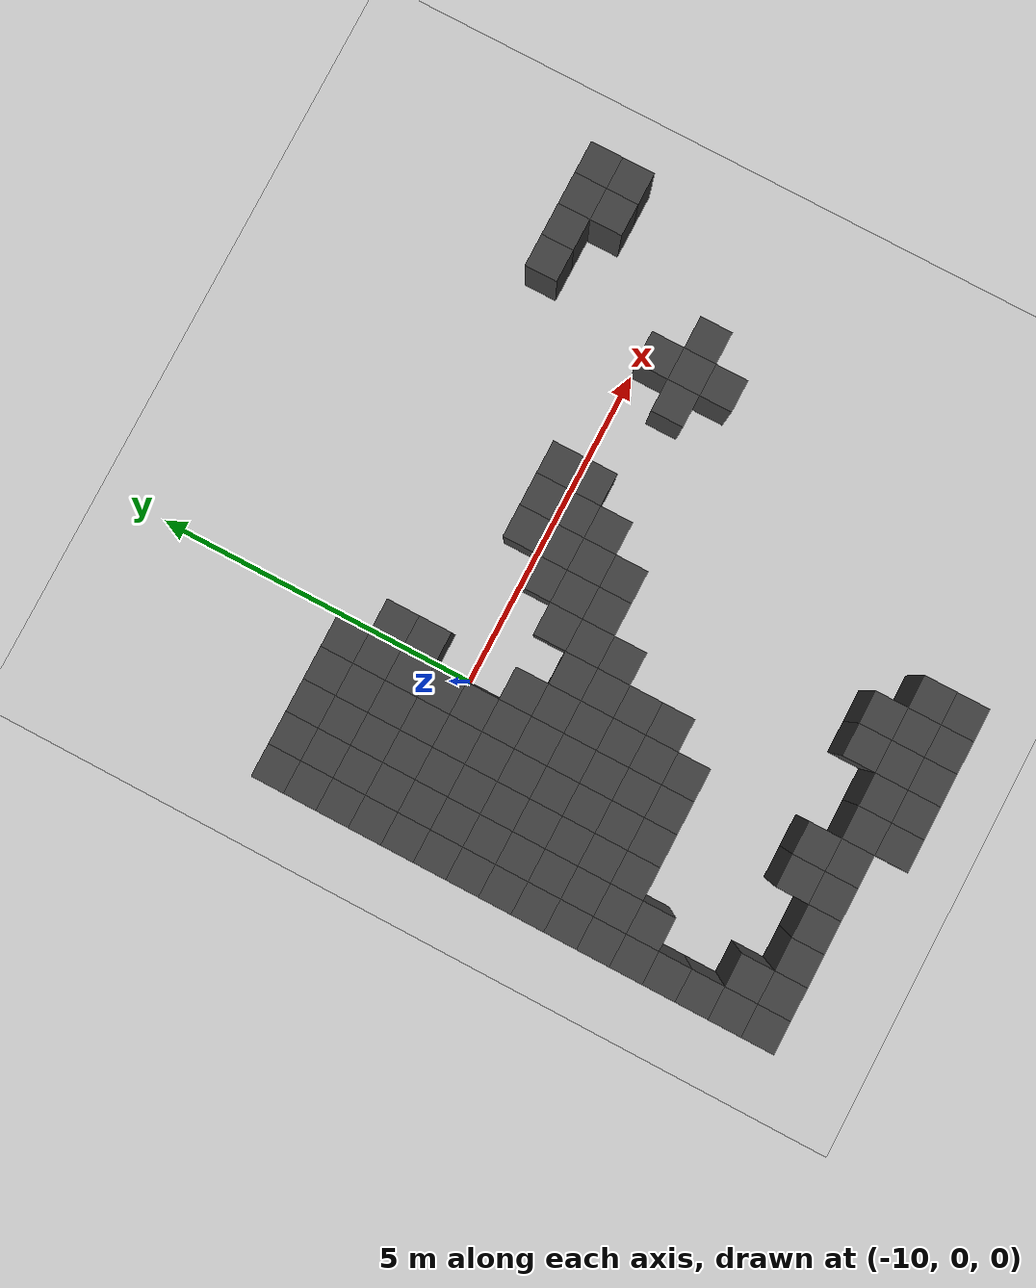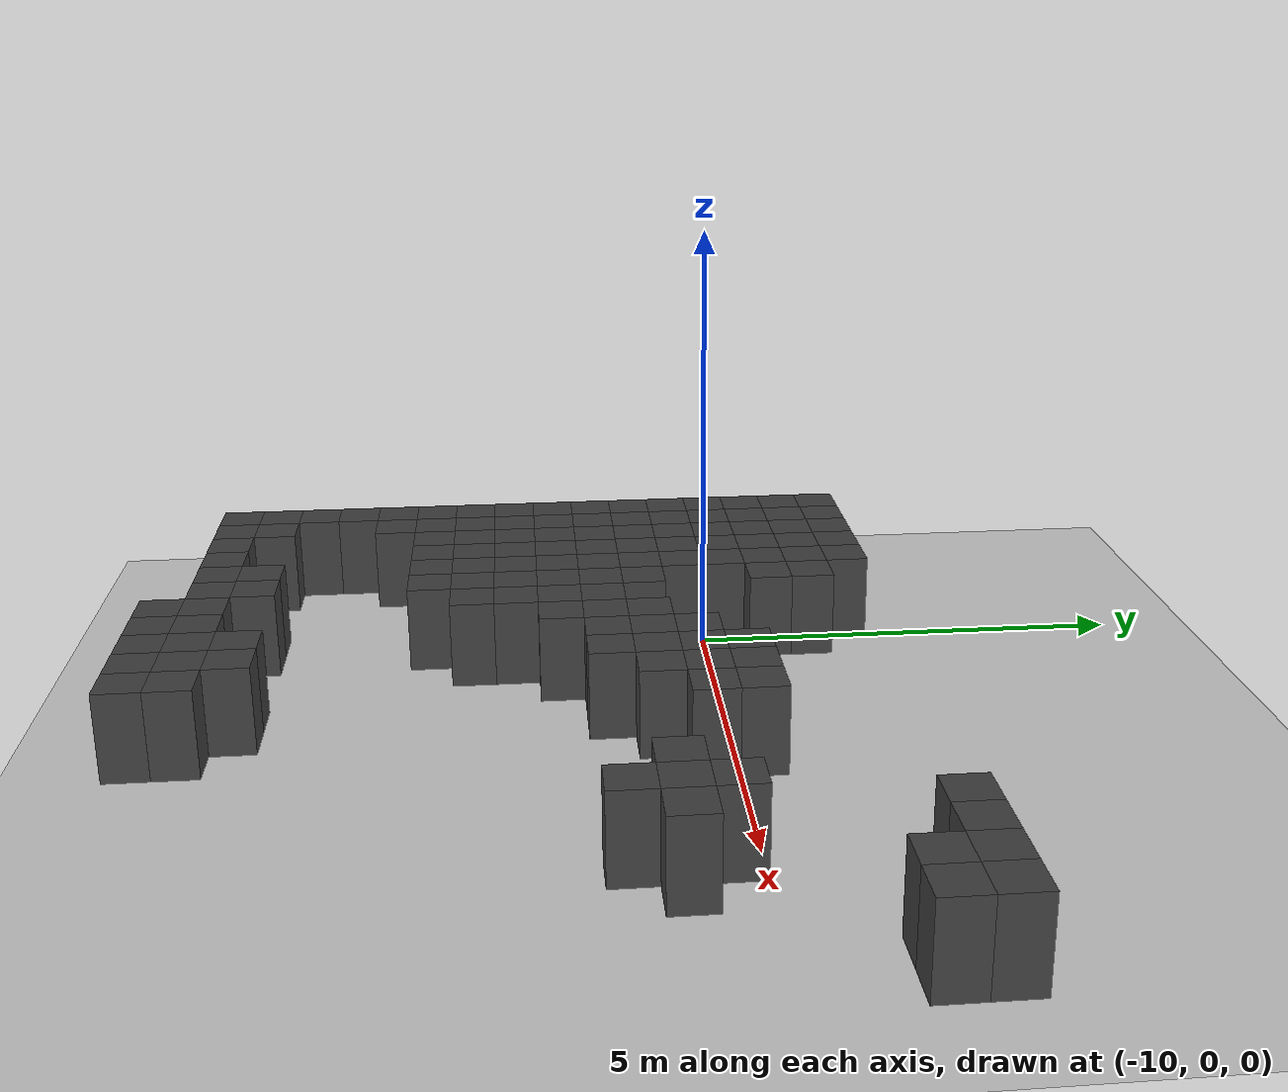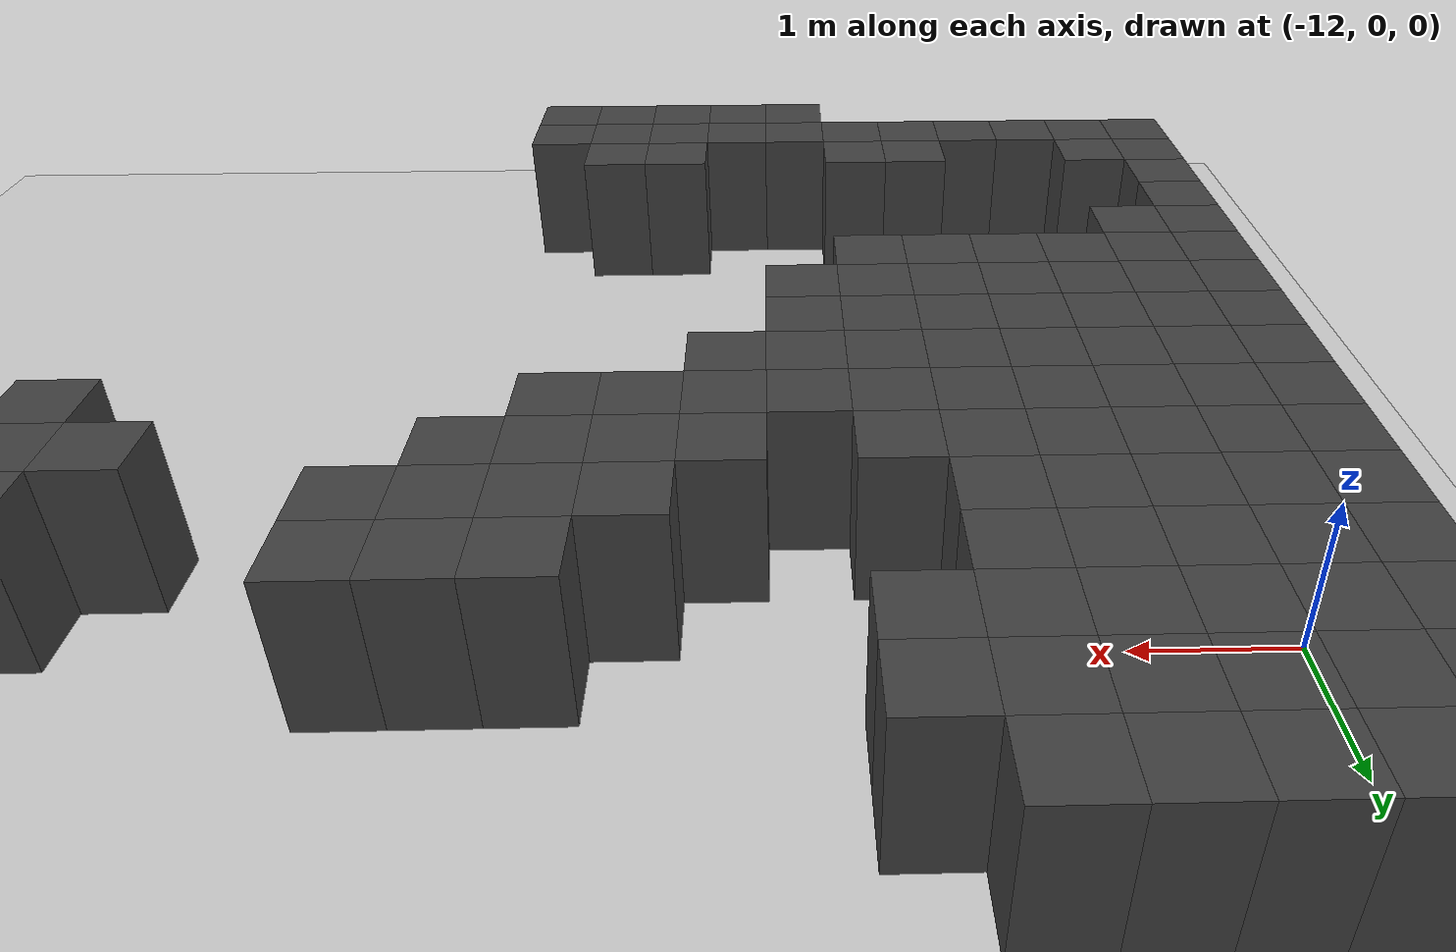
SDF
<sdf version="1.7">
 <world name="map_9705">
  <model name="ground_plane">
   <static>true</static>
   <link name="link">
    <collision name="collision">
     <geometry><plane><normal>0 0 1</normal><size>200 200</size></plane></geometry>
    </collision>
    <visual name="visual">
     <geometry><plane><normal>0 0 1</normal><size>200 200</size></plane></geometry>
     <material><ambient>0.8 0.8 0.8 1</ambient><diffuse>0.8 0.8 0.8 1</diffuse></material>
    </visual>
   </link>
  </model>
  <model name="maze_environment">
   <static>true</static>
   <link name="wall_508">
    <pose>-12.250 1.750 0.500 0 0 0</pose>
    <collision name="col"><geometry><box><size>0.5 0.5 1.0</size></box></geometry></collision>
    <visual name="vis">
     <geometry><box><size>0.5 0.5 1.0</size></box></geometry>
     <material><ambient>0.15 0.15 0.15 1</ambient><diffuse>0.25 0.25 0.25 1</diffuse></material>
    </visual>
   </link>
   <link name="wall_509">
    <pose>-11.750 1.750 0.500 0 0 0</pose>
    <collision name="col"><geometry><box><size>0.5 0.5 1.0</size></box></geometry></collision>
    <visual name="vis">
     <geometry><box><size>0.5 0.5 1.0</size></box></geometry>
     <material><ambient>0.15 0.15 0.15 1</ambient><diffuse>0.25 0.25 0.25 1</diffuse></material>
    </visual>
   </link>
   <link name="wall_510">
    <pose>-11.250 1.750 0.500 0 0 0</pose>
    <collision name="col"><geometry><box><size>0.5 0.5 1.0</size></box></geometry></collision>
    <visual name="vis">
     <geometry><box><size>0.5 0.5 1.0</size></box></geometry>
     <material><ambient>0.15 0.15 0.15 1</ambient><diffuse>0.25 0.25 0.25 1</diffuse></material>
    </visual>
   </link>
   <link name="wall_511">
    <pose>-10.750 1.750 0.500 0 0 0</pose>
    <collision name="col"><geometry><box><size>0.5 0.5 1.0</size></box></geometry></collision>
    <visual name="vis">
     <geometry><box><size>0.5 0.5 1.0</size></box></geometry>
     <material><ambient>0.15 0.15 0.15 1</ambient><diffuse>0.25 0.25 0.25 1</diffuse></material>
    </visual>
   </link>
   <link name="wall_512">
    <pose>-10.250 1.750 0.500 0 0 0</pose>
    <collision name="col"><geometry><box><size>0.5 0.5 1.0</size></box></geometry></collision>
    <visual name="vis">
     <geometry><box><size>0.5 0.5 1.0</size></box></geometry>
     <material><ambient>0.15 0.15 0.15 1</ambient><diffuse>0.25 0.25 0.25 1</diffuse></material>
    </visual>
   </link>
   <link name="wall_513">
    <pose>-4.250 1.750 0.500 0 0 0</pose>
    <collision name="col"><geometry><box><size>0.5 0.5 1.0</size></box></geometry></collision>
    <visual name="vis">
     <geometry><box><size>0.5 0.5 1.0</size></box></geometry>
     <material><ambient>0.15 0.15 0.15 1</ambient><diffuse>0.25 0.25 0.25 1</diffuse></material>
    </visual>
   </link>
   <link name="wall_514">
    <pose>-3.750 1.750 0.500 0 0 0</pose>
    <collision name="col"><geometry><box><size>0.5 0.5 1.0</size></box></geometry></collision>
    <visual name="vis">
     <geometry><box><size>0.5 0.5 1.0</size></box></geometry>
     <material><ambient>0.15 0.15 0.15 1</ambient><diffuse>0.25 0.25 0.25 1</diffuse></material>
    </visual>
   </link>
   <link name="wall_515">
    <pose>-3.250 1.750 0.500 0 0 0</pose>
    <collision name="col"><geometry><box><size>0.5 0.5 1.0</size></box></geometry></collision>
    <visual name="vis">
     <geometry><box><size>0.5 0.5 1.0</size></box></geometry>
     <material><ambient>0.15 0.15 0.15 1</ambient><diffuse>0.25 0.25 0.25 1</diffuse></material>
    </visual>
   </link>
   <link name="wall_516">
    <pose>-2.750 1.750 0.500 0 0 0</pose>
    <collision name="col"><geometry><box><size>0.5 0.5 1.0</size></box></geometry></collision>
    <visual name="vis">
     <geometry><box><size>0.5 0.5 1.0</size></box></geometry>
     <material><ambient>0.15 0.15 0.15 1</ambient><diffuse>0.25 0.25 0.25 1</diffuse></material>
    </visual>
   </link>
   <link name="wall_525">
    <pose>-12.250 1.250 0.500 0 0 0</pose>
    <collision name="col"><geometry><box><size>0.5 0.5 1.0</size></box></geometry></collision>
    <visual name="vis">
     <geometry><box><size>0.5 0.5 1.0</size></box></geometry>
     <material><ambient>0.15 0.15 0.15 1</ambient><diffuse>0.25 0.25 0.25 1</diffuse></material>
    </visual>
   </link>
   <link name="wall_526">
    <pose>-11.750 1.250 0.500 0 0 0</pose>
    <collision name="col"><geometry><box><size>0.5 0.5 1.0</size></box></geometry></collision>
    <visual name="vis">
     <geometry><box><size>0.5 0.5 1.0</size></box></geometry>
     <material><ambient>0.15 0.15 0.15 1</ambient><diffuse>0.25 0.25 0.25 1</diffuse></material>
    </visual>
   </link>
   <link name="wall_527">
    <pose>-11.250 1.250 0.500 0 0 0</pose>
    <collision name="col"><geometry><box><size>0.5 0.5 1.0</size></box></geometry></collision>
    <visual name="vis">
     <geometry><box><size>0.5 0.5 1.0</size></box></geometry>
     <material><ambient>0.15 0.15 0.15 1</ambient><diffuse>0.25 0.25 0.25 1</diffuse></material>
    </visual>
   </link>
   <link name="wall_528">
    <pose>-10.750 1.250 0.500 0 0 0</pose>
    <collision name="col"><geometry><box><size>0.5 0.5 1.0</size></box></geometry></collision>
    <visual name="vis">
     <geometry><box><size>0.5 0.5 1.0</size></box></geometry>
     <material><ambient>0.15 0.15 0.15 1</ambient><diffuse>0.25 0.25 0.25 1</diffuse></material>
    </visual>
   </link>
   <link name="wall_529">
    <pose>-10.250 1.250 0.500 0 0 0</pose>
    <collision name="col"><geometry><box><size>0.5 0.5 1.0</size></box></geometry></collision>
    <visual name="vis">
     <geometry><box><size>0.5 0.5 1.0</size></box></geometry>
     <material><ambient>0.15 0.15 0.15 1</ambient><diffuse>0.25 0.25 0.25 1</diffuse></material>
    </visual>
   </link>
   <link name="wall_530">
    <pose>-9.750 1.250 0.500 0 0 0</pose>
    <collision name="col"><geometry><box><size>0.5 0.5 1.0</size></box></geometry></collision>
    <visual name="vis">
     <geometry><box><size>0.5 0.5 1.0</size></box></geometry>
     <material><ambient>0.15 0.15 0.15 1</ambient><diffuse>0.25 0.25 0.25 1</diffuse></material>
    </visual>
   </link>
   <link name="wall_531">
    <pose>-3.250 1.250 0.500 0 0 0</pose>
    <collision name="col"><geometry><box><size>0.5 0.5 1.0</size></box></geometry></collision>
    <visual name="vis">
     <geometry><box><size>0.5 0.5 1.0</size></box></geometry>
     <material><ambient>0.15 0.15 0.15 1</ambient><diffuse>0.25 0.25 0.25 1</diffuse></material>
    </visual>
   </link>
   <link name="wall_532">
    <pose>-2.750 1.250 0.500 0 0 0</pose>
    <collision name="col"><geometry><box><size>0.5 0.5 1.0</size></box></geometry></collision>
    <visual name="vis">
     <geometry><box><size>0.5 0.5 1.0</size></box></geometry>
     <material><ambient>0.15 0.15 0.15 1</ambient><diffuse>0.25 0.25 0.25 1</diffuse></material>
    </visual>
   </link>
   <link name="wall_542">
    <pose>-12.250 0.750 0.500 0 0 0</pose>
    <collision name="col"><geometry><box><size>0.5 0.5 1.0</size></box></geometry></collision>
    <visual name="vis">
     <geometry><box><size>0.5 0.5 1.0</size></box></geometry>
     <material><ambient>0.15 0.15 0.15 1</ambient><diffuse>0.25 0.25 0.25 1</diffuse></material>
    </visual>
   </link>
   <link name="wall_543">
    <pose>-11.750 0.750 0.500 0 0 0</pose>
    <collision name="col"><geometry><box><size>0.5 0.5 1.0</size></box></geometry></collision>
    <visual name="vis">
     <geometry><box><size>0.5 0.5 1.0</size></box></geometry>
     <material><ambient>0.15 0.15 0.15 1</ambient><diffuse>0.25 0.25 0.25 1</diffuse></material>
    </visual>
   </link>
   <link name="wall_544">
    <pose>-11.250 0.750 0.500 0 0 0</pose>
    <collision name="col"><geometry><box><size>0.5 0.5 1.0</size></box></geometry></collision>
    <visual name="vis">
     <geometry><box><size>0.5 0.5 1.0</size></box></geometry>
     <material><ambient>0.15 0.15 0.15 1</ambient><diffuse>0.25 0.25 0.25 1</diffuse></material>
    </visual>
   </link>
   <link name="wall_545">
    <pose>-10.750 0.750 0.500 0 0 0</pose>
    <collision name="col"><geometry><box><size>0.5 0.5 1.0</size></box></geometry></collision>
    <visual name="vis">
     <geometry><box><size>0.5 0.5 1.0</size></box></geometry>
     <material><ambient>0.15 0.15 0.15 1</ambient><diffuse>0.25 0.25 0.25 1</diffuse></material>
    </visual>
   </link>
   <link name="wall_546">
    <pose>-10.250 0.750 0.500 0 0 0</pose>
    <collision name="col"><geometry><box><size>0.5 0.5 1.0</size></box></geometry></collision>
    <visual name="vis">
     <geometry><box><size>0.5 0.5 1.0</size></box></geometry>
     <material><ambient>0.15 0.15 0.15 1</ambient><diffuse>0.25 0.25 0.25 1</diffuse></material>
    </visual>
   </link>
   <link name="wall_547">
    <pose>-9.750 0.750 0.500 0 0 0</pose>
    <collision name="col"><geometry><box><size>0.5 0.5 1.0</size></box></geometry></collision>
    <visual name="vis">
     <geometry><box><size>0.5 0.5 1.0</size></box></geometry>
     <material><ambient>0.15 0.15 0.15 1</ambient><diffuse>0.25 0.25 0.25 1</diffuse></material>
    </visual>
   </link>
   <link name="wall_555">
    <pose>-12.250 0.250 0.500 0 0 0</pose>
    <collision name="col"><geometry><box><size>0.5 0.5 1.0</size></box></geometry></collision>
    <visual name="vis">
     <geometry><box><size>0.5 0.5 1.0</size></box></geometry>
     <material><ambient>0.15 0.15 0.15 1</ambient><diffuse>0.25 0.25 0.25 1</diffuse></material>
    </visual>
   </link>
   <link name="wall_556">
    <pose>-11.750 0.250 0.500 0 0 0</pose>
    <collision name="col"><geometry><box><size>0.5 0.5 1.0</size></box></geometry></collision>
    <visual name="vis">
     <geometry><box><size>0.5 0.5 1.0</size></box></geometry>
     <material><ambient>0.15 0.15 0.15 1</ambient><diffuse>0.25 0.25 0.25 1</diffuse></material>
    </visual>
   </link>
   <link name="wall_557">
    <pose>-11.250 0.250 0.500 0 0 0</pose>
    <collision name="col"><geometry><box><size>0.5 0.5 1.0</size></box></geometry></collision>
    <visual name="vis">
     <geometry><box><size>0.5 0.5 1.0</size></box></geometry>
     <material><ambient>0.15 0.15 0.15 1</ambient><diffuse>0.25 0.25 0.25 1</diffuse></material>
    </visual>
   </link>
   <link name="wall_558">
    <pose>-10.750 0.250 0.500 0 0 0</pose>
    <collision name="col"><geometry><box><size>0.5 0.5 1.0</size></box></geometry></collision>
    <visual name="vis">
     <geometry><box><size>0.5 0.5 1.0</size></box></geometry>
     <material><ambient>0.15 0.15 0.15 1</ambient><diffuse>0.25 0.25 0.25 1</diffuse></material>
    </visual>
   </link>
   <link name="wall_559">
    <pose>-10.250 0.250 0.500 0 0 0</pose>
    <collision name="col"><geometry><box><size>0.5 0.5 1.0</size></box></geometry></collision>
    <visual name="vis">
     <geometry><box><size>0.5 0.5 1.0</size></box></geometry>
     <material><ambient>0.15 0.15 0.15 1</ambient><diffuse>0.25 0.25 0.25 1</diffuse></material>
    </visual>
   </link>
   <link name="wall_560">
    <pose>-7.750 0.250 0.500 0 0 0</pose>
    <collision name="col"><geometry><box><size>0.5 0.5 1.0</size></box></geometry></collision>
    <visual name="vis">
     <geometry><box><size>0.5 0.5 1.0</size></box></geometry>
     <material><ambient>0.15 0.15 0.15 1</ambient><diffuse>0.25 0.25 0.25 1</diffuse></material>
    </visual>
   </link>
   <link name="wall_561">
    <pose>-7.250 0.250 0.500 0 0 0</pose>
    <collision name="col"><geometry><box><size>0.5 0.5 1.0</size></box></geometry></collision>
    <visual name="vis">
     <geometry><box><size>0.5 0.5 1.0</size></box></geometry>
     <material><ambient>0.15 0.15 0.15 1</ambient><diffuse>0.25 0.25 0.25 1</diffuse></material>
    </visual>
   </link>
   <link name="wall_562">
    <pose>-6.750 0.250 0.500 0 0 0</pose>
    <collision name="col"><geometry><box><size>0.5 0.5 1.0</size></box></geometry></collision>
    <visual name="vis">
     <geometry><box><size>0.5 0.5 1.0</size></box></geometry>
     <material><ambient>0.15 0.15 0.15 1</ambient><diffuse>0.25 0.25 0.25 1</diffuse></material>
    </visual>
   </link>
   <link name="wall_567">
    <pose>-12.250 -0.250 0.500 0 0 0</pose>
    <collision name="col"><geometry><box><size>0.5 0.5 1.0</size></box></geometry></collision>
    <visual name="vis">
     <geometry><box><size>0.5 0.5 1.0</size></box></geometry>
     <material><ambient>0.15 0.15 0.15 1</ambient><diffuse>0.25 0.25 0.25 1</diffuse></material>
    </visual>
   </link>
   <link name="wall_568">
    <pose>-11.750 -0.250 0.500 0 0 0</pose>
    <collision name="col"><geometry><box><size>0.5 0.5 1.0</size></box></geometry></collision>
    <visual name="vis">
     <geometry><box><size>0.5 0.5 1.0</size></box></geometry>
     <material><ambient>0.15 0.15 0.15 1</ambient><diffuse>0.25 0.25 0.25 1</diffuse></material>
    </visual>
   </link>
   <link name="wall_569">
    <pose>-11.250 -0.250 0.500 0 0 0</pose>
    <collision name="col"><geometry><box><size>0.5 0.5 1.0</size></box></geometry></collision>
    <visual name="vis">
     <geometry><box><size>0.5 0.5 1.0</size></box></geometry>
     <material><ambient>0.15 0.15 0.15 1</ambient><diffuse>0.25 0.25 0.25 1</diffuse></material>
    </visual>
   </link>
   <link name="wall_570">
    <pose>-10.750 -0.250 0.500 0 0 0</pose>
    <collision name="col"><geometry><box><size>0.5 0.5 1.0</size></box></geometry></collision>
    <visual name="vis">
     <geometry><box><size>0.5 0.5 1.0</size></box></geometry>
     <material><ambient>0.15 0.15 0.15 1</ambient><diffuse>0.25 0.25 0.25 1</diffuse></material>
    </visual>
   </link>
   <link name="wall_571">
    <pose>-10.250 -0.250 0.500 0 0 0</pose>
    <collision name="col"><geometry><box><size>0.5 0.5 1.0</size></box></geometry></collision>
    <visual name="vis">
     <geometry><box><size>0.5 0.5 1.0</size></box></geometry>
     <material><ambient>0.15 0.15 0.15 1</ambient><diffuse>0.25 0.25 0.25 1</diffuse></material>
    </visual>
   </link>
   <link name="wall_572">
    <pose>-8.250 -0.250 0.500 0 0 0</pose>
    <collision name="col"><geometry><box><size>0.5 0.5 1.0</size></box></geometry></collision>
    <visual name="vis">
     <geometry><box><size>0.5 0.5 1.0</size></box></geometry>
     <material><ambient>0.15 0.15 0.15 1</ambient><diffuse>0.25 0.25 0.25 1</diffuse></material>
    </visual>
   </link>
   <link name="wall_573">
    <pose>-7.750 -0.250 0.500 0 0 0</pose>
    <collision name="col"><geometry><box><size>0.5 0.5 1.0</size></box></geometry></collision>
    <visual name="vis">
     <geometry><box><size>0.5 0.5 1.0</size></box></geometry>
     <material><ambient>0.15 0.15 0.15 1</ambient><diffuse>0.25 0.25 0.25 1</diffuse></material>
    </visual>
   </link>
   <link name="wall_574">
    <pose>-7.250 -0.250 0.500 0 0 0</pose>
    <collision name="col"><geometry><box><size>0.5 0.5 1.0</size></box></geometry></collision>
    <visual name="vis">
     <geometry><box><size>0.5 0.5 1.0</size></box></geometry>
     <material><ambient>0.15 0.15 0.15 1</ambient><diffuse>0.25 0.25 0.25 1</diffuse></material>
    </visual>
   </link>
   <link name="wall_575">
    <pose>-6.750 -0.250 0.500 0 0 0</pose>
    <collision name="col"><geometry><box><size>0.5 0.5 1.0</size></box></geometry></collision>
    <visual name="vis">
     <geometry><box><size>0.5 0.5 1.0</size></box></geometry>
     <material><ambient>0.15 0.15 0.15 1</ambient><diffuse>0.25 0.25 0.25 1</diffuse></material>
    </visual>
   </link>
   <link name="wall_576">
    <pose>-4.750 -0.250 0.500 0 0 0</pose>
    <collision name="col"><geometry><box><size>0.5 0.5 1.0</size></box></geometry></collision>
    <visual name="vis">
     <geometry><box><size>0.5 0.5 1.0</size></box></geometry>
     <material><ambient>0.15 0.15 0.15 1</ambient><diffuse>0.25 0.25 0.25 1</diffuse></material>
    </visual>
   </link>
   <link name="wall_581">
    <pose>-12.250 -0.750 0.500 0 0 0</pose>
    <collision name="col"><geometry><box><size>0.5 0.5 1.0</size></box></geometry></collision>
    <visual name="vis">
     <geometry><box><size>0.5 0.5 1.0</size></box></geometry>
     <material><ambient>0.15 0.15 0.15 1</ambient><diffuse>0.25 0.25 0.25 1</diffuse></material>
    </visual>
   </link>
   <link name="wall_582">
    <pose>-11.750 -0.750 0.500 0 0 0</pose>
    <collision name="col"><geometry><box><size>0.5 0.5 1.0</size></box></geometry></collision>
    <visual name="vis">
     <geometry><box><size>0.5 0.5 1.0</size></box></geometry>
     <material><ambient>0.15 0.15 0.15 1</ambient><diffuse>0.25 0.25 0.25 1</diffuse></material>
    </visual>
   </link>
   <link name="wall_583">
    <pose>-11.250 -0.750 0.500 0 0 0</pose>
    <collision name="col"><geometry><box><size>0.5 0.5 1.0</size></box></geometry></collision>
    <visual name="vis">
     <geometry><box><size>0.5 0.5 1.0</size></box></geometry>
     <material><ambient>0.15 0.15 0.15 1</ambient><diffuse>0.25 0.25 0.25 1</diffuse></material>
    </visual>
   </link>
   <link name="wall_584">
    <pose>-10.750 -0.750 0.500 0 0 0</pose>
    <collision name="col"><geometry><box><size>0.5 0.5 1.0</size></box></geometry></collision>
    <visual name="vis">
     <geometry><box><size>0.5 0.5 1.0</size></box></geometry>
     <material><ambient>0.15 0.15 0.15 1</ambient><diffuse>0.25 0.25 0.25 1</diffuse></material>
    </visual>
   </link>
   <link name="wall_585">
    <pose>-10.250 -0.750 0.500 0 0 0</pose>
    <collision name="col"><geometry><box><size>0.5 0.5 1.0</size></box></geometry></collision>
    <visual name="vis">
     <geometry><box><size>0.5 0.5 1.0</size></box></geometry>
     <material><ambient>0.15 0.15 0.15 1</ambient><diffuse>0.25 0.25 0.25 1</diffuse></material>
    </visual>
   </link>
   <link name="wall_586">
    <pose>-9.750 -0.750 0.500 0 0 0</pose>
    <collision name="col"><geometry><box><size>0.5 0.5 1.0</size></box></geometry></collision>
    <visual name="vis">
     <geometry><box><size>0.5 0.5 1.0</size></box></geometry>
     <material><ambient>0.15 0.15 0.15 1</ambient><diffuse>0.25 0.25 0.25 1</diffuse></material>
    </visual>
   </link>
   <link name="wall_587">
    <pose>-8.750 -0.750 0.500 0 0 0</pose>
    <collision name="col"><geometry><box><size>0.5 0.5 1.0</size></box></geometry></collision>
    <visual name="vis">
     <geometry><box><size>0.5 0.5 1.0</size></box></geometry>
     <material><ambient>0.15 0.15 0.15 1</ambient><diffuse>0.25 0.25 0.25 1</diffuse></material>
    </visual>
   </link>
   <link name="wall_588">
    <pose>-8.250 -0.750 0.500 0 0 0</pose>
    <collision name="col"><geometry><box><size>0.5 0.5 1.0</size></box></geometry></collision>
    <visual name="vis">
     <geometry><box><size>0.5 0.5 1.0</size></box></geometry>
     <material><ambient>0.15 0.15 0.15 1</ambient><diffuse>0.25 0.25 0.25 1</diffuse></material>
    </visual>
   </link>
   <link name="wall_589">
    <pose>-7.750 -0.750 0.500 0 0 0</pose>
    <collision name="col"><geometry><box><size>0.5 0.5 1.0</size></box></geometry></collision>
    <visual name="vis">
     <geometry><box><size>0.5 0.5 1.0</size></box></geometry>
     <material><ambient>0.15 0.15 0.15 1</ambient><diffuse>0.25 0.25 0.25 1</diffuse></material>
    </visual>
   </link>
   <link name="wall_590">
    <pose>-7.250 -0.750 0.500 0 0 0</pose>
    <collision name="col"><geometry><box><size>0.5 0.5 1.0</size></box></geometry></collision>
    <visual name="vis">
     <geometry><box><size>0.5 0.5 1.0</size></box></geometry>
     <material><ambient>0.15 0.15 0.15 1</ambient><diffuse>0.25 0.25 0.25 1</diffuse></material>
    </visual>
   </link>
   <link name="wall_591">
    <pose>-5.250 -0.750 0.500 0 0 0</pose>
    <collision name="col"><geometry><box><size>0.5 0.5 1.0</size></box></geometry></collision>
    <visual name="vis">
     <geometry><box><size>0.5 0.5 1.0</size></box></geometry>
     <material><ambient>0.15 0.15 0.15 1</ambient><diffuse>0.25 0.25 0.25 1</diffuse></material>
    </visual>
   </link>
   <link name="wall_592">
    <pose>-4.750 -0.750 0.500 0 0 0</pose>
    <collision name="col"><geometry><box><size>0.5 0.5 1.0</size></box></geometry></collision>
    <visual name="vis">
     <geometry><box><size>0.5 0.5 1.0</size></box></geometry>
     <material><ambient>0.15 0.15 0.15 1</ambient><diffuse>0.25 0.25 0.25 1</diffuse></material>
    </visual>
   </link>
   <link name="wall_593">
    <pose>-4.250 -0.750 0.500 0 0 0</pose>
    <collision name="col"><geometry><box><size>0.5 0.5 1.0</size></box></geometry></collision>
    <visual name="vis">
     <geometry><box><size>0.5 0.5 1.0</size></box></geometry>
     <material><ambient>0.15 0.15 0.15 1</ambient><diffuse>0.25 0.25 0.25 1</diffuse></material>
    </visual>
   </link>
   <link name="wall_600">
    <pose>-12.250 -1.250 0.500 0 0 0</pose>
    <collision name="col"><geometry><box><size>0.5 0.5 1.0</size></box></geometry></collision>
    <visual name="vis">
     <geometry><box><size>0.5 0.5 1.0</size></box></geometry>
     <material><ambient>0.15 0.15 0.15 1</ambient><diffuse>0.25 0.25 0.25 1</diffuse></material>
    </visual>
   </link>
   <link name="wall_601">
    <pose>-11.750 -1.250 0.500 0 0 0</pose>
    <collision name="col"><geometry><box><size>0.5 0.5 1.0</size></box></geometry></collision>
    <visual name="vis">
     <geometry><box><size>0.5 0.5 1.0</size></box></geometry>
     <material><ambient>0.15 0.15 0.15 1</ambient><diffuse>0.25 0.25 0.25 1</diffuse></material>
    </visual>
   </link>
   <link name="wall_602">
    <pose>-11.250 -1.250 0.500 0 0 0</pose>
    <collision name="col"><geometry><box><size>0.5 0.5 1.0</size></box></geometry></collision>
    <visual name="vis">
     <geometry><box><size>0.5 0.5 1.0</size></box></geometry>
     <material><ambient>0.15 0.15 0.15 1</ambient><diffuse>0.25 0.25 0.25 1</diffuse></material>
    </visual>
   </link>
   <link name="wall_603">
    <pose>-10.750 -1.250 0.500 0 0 0</pose>
    <collision name="col"><geometry><box><size>0.5 0.5 1.0</size></box></geometry></collision>
    <visual name="vis">
     <geometry><box><size>0.5 0.5 1.0</size></box></geometry>
     <material><ambient>0.15 0.15 0.15 1</ambient><diffuse>0.25 0.25 0.25 1</diffuse></material>
    </visual>
   </link>
   <link name="wall_604">
    <pose>-10.250 -1.250 0.500 0 0 0</pose>
    <collision name="col"><geometry><box><size>0.5 0.5 1.0</size></box></geometry></collision>
    <visual name="vis">
     <geometry><box><size>0.5 0.5 1.0</size></box></geometry>
     <material><ambient>0.15 0.15 0.15 1</ambient><diffuse>0.25 0.25 0.25 1</diffuse></material>
    </visual>
   </link>
   <link name="wall_605">
    <pose>-9.750 -1.250 0.500 0 0 0</pose>
    <collision name="col"><geometry><box><size>0.5 0.5 1.0</size></box></geometry></collision>
    <visual name="vis">
     <geometry><box><size>0.5 0.5 1.0</size></box></geometry>
     <material><ambient>0.15 0.15 0.15 1</ambient><diffuse>0.25 0.25 0.25 1</diffuse></material>
    </visual>
   </link>
   <link name="wall_606">
    <pose>-9.250 -1.250 0.500 0 0 0</pose>
    <collision name="col"><geometry><box><size>0.5 0.5 1.0</size></box></geometry></collision>
    <visual name="vis">
     <geometry><box><size>0.5 0.5 1.0</size></box></geometry>
     <material><ambient>0.15 0.15 0.15 1</ambient><diffuse>0.25 0.25 0.25 1</diffuse></material>
    </visual>
   </link>
   <link name="wall_607">
    <pose>-8.750 -1.250 0.500 0 0 0</pose>
    <collision name="col"><geometry><box><size>0.5 0.5 1.0</size></box></geometry></collision>
    <visual name="vis">
     <geometry><box><size>0.5 0.5 1.0</size></box></geometry>
     <material><ambient>0.15 0.15 0.15 1</ambient><diffuse>0.25 0.25 0.25 1</diffuse></material>
    </visual>
   </link>
   <link name="wall_608">
    <pose>-8.250 -1.250 0.500 0 0 0</pose>
    <collision name="col"><geometry><box><size>0.5 0.5 1.0</size></box></geometry></collision>
    <visual name="vis">
     <geometry><box><size>0.5 0.5 1.0</size></box></geometry>
     <material><ambient>0.15 0.15 0.15 1</ambient><diffuse>0.25 0.25 0.25 1</diffuse></material>
    </visual>
   </link>
   <link name="wall_609">
    <pose>-7.750 -1.250 0.500 0 0 0</pose>
    <collision name="col"><geometry><box><size>0.5 0.5 1.0</size></box></geometry></collision>
    <visual name="vis">
     <geometry><box><size>0.5 0.5 1.0</size></box></geometry>
     <material><ambient>0.15 0.15 0.15 1</ambient><diffuse>0.25 0.25 0.25 1</diffuse></material>
    </visual>
   </link>
   <link name="wall_610">
    <pose>-4.750 -1.250 0.500 0 0 0</pose>
    <collision name="col"><geometry><box><size>0.5 0.5 1.0</size></box></geometry></collision>
    <visual name="vis">
     <geometry><box><size>0.5 0.5 1.0</size></box></geometry>
     <material><ambient>0.15 0.15 0.15 1</ambient><diffuse>0.25 0.25 0.25 1</diffuse></material>
    </visual>
   </link>
   <link name="wall_623">
    <pose>-12.250 -1.750 0.500 0 0 0</pose>
    <collision name="col"><geometry><box><size>0.5 0.5 1.0</size></box></geometry></collision>
    <visual name="vis">
     <geometry><box><size>0.5 0.5 1.0</size></box></geometry>
     <material><ambient>0.15 0.15 0.15 1</ambient><diffuse>0.25 0.25 0.25 1</diffuse></material>
    </visual>
   </link>
   <link name="wall_624">
    <pose>-11.750 -1.750 0.500 0 0 0</pose>
    <collision name="col"><geometry><box><size>0.5 0.5 1.0</size></box></geometry></collision>
    <visual name="vis">
     <geometry><box><size>0.5 0.5 1.0</size></box></geometry>
     <material><ambient>0.15 0.15 0.15 1</ambient><diffuse>0.25 0.25 0.25 1</diffuse></material>
    </visual>
   </link>
   <link name="wall_625">
    <pose>-11.250 -1.750 0.500 0 0 0</pose>
    <collision name="col"><geometry><box><size>0.5 0.5 1.0</size></box></geometry></collision>
    <visual name="vis">
     <geometry><box><size>0.5 0.5 1.0</size></box></geometry>
     <material><ambient>0.15 0.15 0.15 1</ambient><diffuse>0.25 0.25 0.25 1</diffuse></material>
    </visual>
   </link>
   <link name="wall_626">
    <pose>-10.750 -1.750 0.500 0 0 0</pose>
    <collision name="col"><geometry><box><size>0.5 0.5 1.0</size></box></geometry></collision>
    <visual name="vis">
     <geometry><box><size>0.5 0.5 1.0</size></box></geometry>
     <material><ambient>0.15 0.15 0.15 1</ambient><diffuse>0.25 0.25 0.25 1</diffuse></material>
    </visual>
   </link>
   <link name="wall_627">
    <pose>-10.250 -1.750 0.500 0 0 0</pose>
    <collision name="col"><geometry><box><size>0.5 0.5 1.0</size></box></geometry></collision>
    <visual name="vis">
     <geometry><box><size>0.5 0.5 1.0</size></box></geometry>
     <material><ambient>0.15 0.15 0.15 1</ambient><diffuse>0.25 0.25 0.25 1</diffuse></material>
    </visual>
   </link>
   <link name="wall_628">
    <pose>-9.750 -1.750 0.500 0 0 0</pose>
    <collision name="col"><geometry><box><size>0.5 0.5 1.0</size></box></geometry></collision>
    <visual name="vis">
     <geometry><box><size>0.5 0.5 1.0</size></box></geometry>
     <material><ambient>0.15 0.15 0.15 1</ambient><diffuse>0.25 0.25 0.25 1</diffuse></material>
    </visual>
   </link>
   <link name="wall_629">
    <pose>-9.250 -1.750 0.500 0 0 0</pose>
    <collision name="col"><geometry><box><size>0.5 0.5 1.0</size></box></geometry></collision>
    <visual name="vis">
     <geometry><box><size>0.5 0.5 1.0</size></box></geometry>
     <material><ambient>0.15 0.15 0.15 1</ambient><diffuse>0.25 0.25 0.25 1</diffuse></material>
    </visual>
   </link>
   <link name="wall_630">
    <pose>-8.750 -1.750 0.500 0 0 0</pose>
    <collision name="col"><geometry><box><size>0.5 0.5 1.0</size></box></geometry></collision>
    <visual name="vis">
     <geometry><box><size>0.5 0.5 1.0</size></box></geometry>
     <material><ambient>0.15 0.15 0.15 1</ambient><diffuse>0.25 0.25 0.25 1</diffuse></material>
    </visual>
   </link>
   <link name="wall_647">
    <pose>-12.250 -2.250 0.500 0 0 0</pose>
    <collision name="col"><geometry><box><size>0.5 0.5 1.0</size></box></geometry></collision>
    <visual name="vis">
     <geometry><box><size>0.5 0.5 1.0</size></box></geometry>
     <material><ambient>0.15 0.15 0.15 1</ambient><diffuse>0.25 0.25 0.25 1</diffuse></material>
    </visual>
   </link>
   <link name="wall_648">
    <pose>-11.750 -2.250 0.500 0 0 0</pose>
    <collision name="col"><geometry><box><size>0.5 0.5 1.0</size></box></geometry></collision>
    <visual name="vis">
     <geometry><box><size>0.5 0.5 1.0</size></box></geometry>
     <material><ambient>0.15 0.15 0.15 1</ambient><diffuse>0.25 0.25 0.25 1</diffuse></material>
    </visual>
   </link>
   <link name="wall_649">
    <pose>-11.250 -2.250 0.500 0 0 0</pose>
    <collision name="col"><geometry><box><size>0.5 0.5 1.0</size></box></geometry></collision>
    <visual name="vis">
     <geometry><box><size>0.5 0.5 1.0</size></box></geometry>
     <material><ambient>0.15 0.15 0.15 1</ambient><diffuse>0.25 0.25 0.25 1</diffuse></material>
    </visual>
   </link>
   <link name="wall_650">
    <pose>-10.750 -2.250 0.500 0 0 0</pose>
    <collision name="col"><geometry><box><size>0.5 0.5 1.0</size></box></geometry></collision>
    <visual name="vis">
     <geometry><box><size>0.5 0.5 1.0</size></box></geometry>
     <material><ambient>0.15 0.15 0.15 1</ambient><diffuse>0.25 0.25 0.25 1</diffuse></material>
    </visual>
   </link>
   <link name="wall_651">
    <pose>-10.250 -2.250 0.500 0 0 0</pose>
    <collision name="col"><geometry><box><size>0.5 0.5 1.0</size></box></geometry></collision>
    <visual name="vis">
     <geometry><box><size>0.5 0.5 1.0</size></box></geometry>
     <material><ambient>0.15 0.15 0.15 1</ambient><diffuse>0.25 0.25 0.25 1</diffuse></material>
    </visual>
   </link>
   <link name="wall_652">
    <pose>-9.750 -2.250 0.500 0 0 0</pose>
    <collision name="col"><geometry><box><size>0.5 0.5 1.0</size></box></geometry></collision>
    <visual name="vis">
     <geometry><box><size>0.5 0.5 1.0</size></box></geometry>
     <material><ambient>0.15 0.15 0.15 1</ambient><diffuse>0.25 0.25 0.25 1</diffuse></material>
    </visual>
   </link>
   <link name="wall_653">
    <pose>-9.250 -2.250 0.500 0 0 0</pose>
    <collision name="col"><geometry><box><size>0.5 0.5 1.0</size></box></geometry></collision>
    <visual name="vis">
     <geometry><box><size>0.5 0.5 1.0</size></box></geometry>
     <material><ambient>0.15 0.15 0.15 1</ambient><diffuse>0.25 0.25 0.25 1</diffuse></material>
    </visual>
   </link>
   <link name="wall_672">
    <pose>-12.250 -2.750 0.500 0 0 0</pose>
    <collision name="col"><geometry><box><size>0.5 0.5 1.0</size></box></geometry></collision>
    <visual name="vis">
     <geometry><box><size>0.5 0.5 1.0</size></box></geometry>
     <material><ambient>0.15 0.15 0.15 1</ambient><diffuse>0.25 0.25 0.25 1</diffuse></material>
    </visual>
   </link>
   <link name="wall_673">
    <pose>-11.750 -2.750 0.500 0 0 0</pose>
    <collision name="col"><geometry><box><size>0.5 0.5 1.0</size></box></geometry></collision>
    <visual name="vis">
     <geometry><box><size>0.5 0.5 1.0</size></box></geometry>
     <material><ambient>0.15 0.15 0.15 1</ambient><diffuse>0.25 0.25 0.25 1</diffuse></material>
    </visual>
   </link>
   <link name="wall_674">
    <pose>-11.250 -2.750 0.500 0 0 0</pose>
    <collision name="col"><geometry><box><size>0.5 0.5 1.0</size></box></geometry></collision>
    <visual name="vis">
     <geometry><box><size>0.5 0.5 1.0</size></box></geometry>
     <material><ambient>0.15 0.15 0.15 1</ambient><diffuse>0.25 0.25 0.25 1</diffuse></material>
    </visual>
   </link>
   <link name="wall_675">
    <pose>-10.750 -2.750 0.500 0 0 0</pose>
    <collision name="col"><geometry><box><size>0.5 0.5 1.0</size></box></geometry></collision>
    <visual name="vis">
     <geometry><box><size>0.5 0.5 1.0</size></box></geometry>
     <material><ambient>0.15 0.15 0.15 1</ambient><diffuse>0.25 0.25 0.25 1</diffuse></material>
    </visual>
   </link>
   <link name="wall_676">
    <pose>-10.250 -2.750 0.500 0 0 0</pose>
    <collision name="col"><geometry><box><size>0.5 0.5 1.0</size></box></geometry></collision>
    <visual name="vis">
     <geometry><box><size>0.5 0.5 1.0</size></box></geometry>
     <material><ambient>0.15 0.15 0.15 1</ambient><diffuse>0.25 0.25 0.25 1</diffuse></material>
    </visual>
   </link>
   <link name="wall_677">
    <pose>-9.750 -2.750 0.500 0 0 0</pose>
    <collision name="col"><geometry><box><size>0.5 0.5 1.0</size></box></geometry></collision>
    <visual name="vis">
     <geometry><box><size>0.5 0.5 1.0</size></box></geometry>
     <material><ambient>0.15 0.15 0.15 1</ambient><diffuse>0.25 0.25 0.25 1</diffuse></material>
    </visual>
   </link>
   <link name="wall_678">
    <pose>-9.250 -2.750 0.500 0 0 0</pose>
    <collision name="col"><geometry><box><size>0.5 0.5 1.0</size></box></geometry></collision>
    <visual name="vis">
     <geometry><box><size>0.5 0.5 1.0</size></box></geometry>
     <material><ambient>0.15 0.15 0.15 1</ambient><diffuse>0.25 0.25 0.25 1</diffuse></material>
    </visual>
   </link>
   <link name="wall_692">
    <pose>-12.250 -3.250 0.500 0 0 0</pose>
    <collision name="col"><geometry><box><size>0.5 0.5 1.0</size></box></geometry></collision>
    <visual name="vis">
     <geometry><box><size>0.5 0.5 1.0</size></box></geometry>
     <material><ambient>0.15 0.15 0.15 1</ambient><diffuse>0.25 0.25 0.25 1</diffuse></material>
    </visual>
   </link>
   <link name="wall_693">
    <pose>-11.750 -3.250 0.500 0 0 0</pose>
    <collision name="col"><geometry><box><size>0.5 0.5 1.0</size></box></geometry></collision>
    <visual name="vis">
     <geometry><box><size>0.5 0.5 1.0</size></box></geometry>
     <material><ambient>0.15 0.15 0.15 1</ambient><diffuse>0.25 0.25 0.25 1</diffuse></material>
    </visual>
   </link>
   <link name="wall_694">
    <pose>-11.250 -3.250 0.500 0 0 0</pose>
    <collision name="col"><geometry><box><size>0.5 0.5 1.0</size></box></geometry></collision>
    <visual name="vis">
     <geometry><box><size>0.5 0.5 1.0</size></box></geometry>
     <material><ambient>0.15 0.15 0.15 1</ambient><diffuse>0.25 0.25 0.25 1</diffuse></material>
    </visual>
   </link>
   <link name="wall_695">
    <pose>-10.750 -3.250 0.500 0 0 0</pose>
    <collision name="col"><geometry><box><size>0.5 0.5 1.0</size></box></geometry></collision>
    <visual name="vis">
     <geometry><box><size>0.5 0.5 1.0</size></box></geometry>
     <material><ambient>0.15 0.15 0.15 1</ambient><diffuse>0.25 0.25 0.25 1</diffuse></material>
    </visual>
   </link>
   <link name="wall_696">
    <pose>-10.250 -3.250 0.500 0 0 0</pose>
    <collision name="col"><geometry><box><size>0.5 0.5 1.0</size></box></geometry></collision>
    <visual name="vis">
     <geometry><box><size>0.5 0.5 1.0</size></box></geometry>
     <material><ambient>0.15 0.15 0.15 1</ambient><diffuse>0.25 0.25 0.25 1</diffuse></material>
    </visual>
   </link>
   <link name="wall_697">
    <pose>-9.750 -3.250 0.500 0 0 0</pose>
    <collision name="col"><geometry><box><size>0.5 0.5 1.0</size></box></geometry></collision>
    <visual name="vis">
     <geometry><box><size>0.5 0.5 1.0</size></box></geometry>
     <material><ambient>0.15 0.15 0.15 1</ambient><diffuse>0.25 0.25 0.25 1</diffuse></material>
    </visual>
   </link>
   <link name="wall_709">
    <pose>-12.250 -3.750 0.500 0 0 0</pose>
    <collision name="col"><geometry><box><size>0.5 0.5 1.0</size></box></geometry></collision>
    <visual name="vis">
     <geometry><box><size>0.5 0.5 1.0</size></box></geometry>
     <material><ambient>0.15 0.15 0.15 1</ambient><diffuse>0.25 0.25 0.25 1</diffuse></material>
    </visual>
   </link>
   <link name="wall_710">
    <pose>-11.750 -3.750 0.500 0 0 0</pose>
    <collision name="col"><geometry><box><size>0.5 0.5 1.0</size></box></geometry></collision>
    <visual name="vis">
     <geometry><box><size>0.5 0.5 1.0</size></box></geometry>
     <material><ambient>0.15 0.15 0.15 1</ambient><diffuse>0.25 0.25 0.25 1</diffuse></material>
    </visual>
   </link>
   <link name="wall_720">
    <pose>-12.250 -4.250 0.500 0 0 0</pose>
    <collision name="col"><geometry><box><size>0.5 0.5 1.0</size></box></geometry></collision>
    <visual name="vis">
     <geometry><box><size>0.5 0.5 1.0</size></box></geometry>
     <material><ambient>0.15 0.15 0.15 1</ambient><diffuse>0.25 0.25 0.25 1</diffuse></material>
    </visual>
   </link>
   <link name="wall_728">
    <pose>-12.250 -4.750 0.500 0 0 0</pose>
    <collision name="col"><geometry><box><size>0.5 0.5 1.0</size></box></geometry></collision>
    <visual name="vis">
     <geometry><box><size>0.5 0.5 1.0</size></box></geometry>
     <material><ambient>0.15 0.15 0.15 1</ambient><diffuse>0.25 0.25 0.25 1</diffuse></material>
    </visual>
   </link>
   <link name="wall_735">
    <pose>-12.250 -5.250 0.500 0 0 0</pose>
    <collision name="col"><geometry><box><size>0.5 0.5 1.0</size></box></geometry></collision>
    <visual name="vis">
     <geometry><box><size>0.5 0.5 1.0</size></box></geometry>
     <material><ambient>0.15 0.15 0.15 1</ambient><diffuse>0.25 0.25 0.25 1</diffuse></material>
    </visual>
   </link>
   <link name="wall_736">
    <pose>-11.750 -5.250 0.500 0 0 0</pose>
    <collision name="col"><geometry><box><size>0.5 0.5 1.0</size></box></geometry></collision>
    <visual name="vis">
     <geometry><box><size>0.5 0.5 1.0</size></box></geometry>
     <material><ambient>0.15 0.15 0.15 1</ambient><diffuse>0.25 0.25 0.25 1</diffuse></material>
    </visual>
   </link>
   <link name="wall_737">
    <pose>-10.250 -5.250 0.500 0 0 0</pose>
    <collision name="col"><geometry><box><size>0.5 0.5 1.0</size></box></geometry></collision>
    <visual name="vis">
     <geometry><box><size>0.5 0.5 1.0</size></box></geometry>
     <material><ambient>0.15 0.15 0.15 1</ambient><diffuse>0.25 0.25 0.25 1</diffuse></material>
    </visual>
   </link>
   <link name="wall_738">
    <pose>-9.750 -5.250 0.500 0 0 0</pose>
    <collision name="col"><geometry><box><size>0.5 0.5 1.0</size></box></geometry></collision>
    <visual name="vis">
     <geometry><box><size>0.5 0.5 1.0</size></box></geometry>
     <material><ambient>0.15 0.15 0.15 1</ambient><diffuse>0.25 0.25 0.25 1</diffuse></material>
    </visual>
   </link>
   <link name="wall_739">
    <pose>-8.250 -5.250 0.500 0 0 0</pose>
    <collision name="col"><geometry><box><size>0.5 0.5 1.0</size></box></geometry></collision>
    <visual name="vis">
     <geometry><box><size>0.5 0.5 1.0</size></box></geometry>
     <material><ambient>0.15 0.15 0.15 1</ambient><diffuse>0.25 0.25 0.25 1</diffuse></material>
    </visual>
   </link>
   <link name="wall_740">
    <pose>-7.750 -5.250 0.500 0 0 0</pose>
    <collision name="col"><geometry><box><size>0.5 0.5 1.0</size></box></geometry></collision>
    <visual name="vis">
     <geometry><box><size>0.5 0.5 1.0</size></box></geometry>
     <material><ambient>0.15 0.15 0.15 1</ambient><diffuse>0.25 0.25 0.25 1</diffuse></material>
    </visual>
   </link>
   <link name="wall_747">
    <pose>-12.250 -5.750 0.500 0 0 0</pose>
    <collision name="col"><geometry><box><size>0.5 0.5 1.0</size></box></geometry></collision>
    <visual name="vis">
     <geometry><box><size>0.5 0.5 1.0</size></box></geometry>
     <material><ambient>0.15 0.15 0.15 1</ambient><diffuse>0.25 0.25 0.25 1</diffuse></material>
    </visual>
   </link>
   <link name="wall_748">
    <pose>-11.750 -5.750 0.500 0 0 0</pose>
    <collision name="col"><geometry><box><size>0.5 0.5 1.0</size></box></geometry></collision>
    <visual name="vis">
     <geometry><box><size>0.5 0.5 1.0</size></box></geometry>
     <material><ambient>0.15 0.15 0.15 1</ambient><diffuse>0.25 0.25 0.25 1</diffuse></material>
    </visual>
   </link>
   <link name="wall_749">
    <pose>-11.250 -5.750 0.500 0 0 0</pose>
    <collision name="col"><geometry><box><size>0.5 0.5 1.0</size></box></geometry></collision>
    <visual name="vis">
     <geometry><box><size>0.5 0.5 1.0</size></box></geometry>
     <material><ambient>0.15 0.15 0.15 1</ambient><diffuse>0.25 0.25 0.25 1</diffuse></material>
    </visual>
   </link>
   <link name="wall_750">
    <pose>-10.750 -5.750 0.500 0 0 0</pose>
    <collision name="col"><geometry><box><size>0.5 0.5 1.0</size></box></geometry></collision>
    <visual name="vis">
     <geometry><box><size>0.5 0.5 1.0</size></box></geometry>
     <material><ambient>0.15 0.15 0.15 1</ambient><diffuse>0.25 0.25 0.25 1</diffuse></material>
    </visual>
   </link>
   <link name="wall_751">
    <pose>-10.250 -5.750 0.500 0 0 0</pose>
    <collision name="col"><geometry><box><size>0.5 0.5 1.0</size></box></geometry></collision>
    <visual name="vis">
     <geometry><box><size>0.5 0.5 1.0</size></box></geometry>
     <material><ambient>0.15 0.15 0.15 1</ambient><diffuse>0.25 0.25 0.25 1</diffuse></material>
    </visual>
   </link>
   <link name="wall_752">
    <pose>-9.750 -5.750 0.500 0 0 0</pose>
    <collision name="col"><geometry><box><size>0.5 0.5 1.0</size></box></geometry></collision>
    <visual name="vis">
     <geometry><box><size>0.5 0.5 1.0</size></box></geometry>
     <material><ambient>0.15 0.15 0.15 1</ambient><diffuse>0.25 0.25 0.25 1</diffuse></material>
    </visual>
   </link>
   <link name="wall_753">
    <pose>-9.250 -5.750 0.500 0 0 0</pose>
    <collision name="col"><geometry><box><size>0.5 0.5 1.0</size></box></geometry></collision>
    <visual name="vis">
     <geometry><box><size>0.5 0.5 1.0</size></box></geometry>
     <material><ambient>0.15 0.15 0.15 1</ambient><diffuse>0.25 0.25 0.25 1</diffuse></material>
    </visual>
   </link>
   <link name="wall_754">
    <pose>-8.750 -5.750 0.500 0 0 0</pose>
    <collision name="col"><geometry><box><size>0.5 0.5 1.0</size></box></geometry></collision>
    <visual name="vis">
     <geometry><box><size>0.5 0.5 1.0</size></box></geometry>
     <material><ambient>0.15 0.15 0.15 1</ambient><diffuse>0.25 0.25 0.25 1</diffuse></material>
    </visual>
   </link>
   <link name="wall_755">
    <pose>-8.250 -5.750 0.500 0 0 0</pose>
    <collision name="col"><geometry><box><size>0.5 0.5 1.0</size></box></geometry></collision>
    <visual name="vis">
     <geometry><box><size>0.5 0.5 1.0</size></box></geometry>
     <material><ambient>0.15 0.15 0.15 1</ambient><diffuse>0.25 0.25 0.25 1</diffuse></material>
    </visual>
   </link>
   <link name="wall_756">
    <pose>-7.750 -5.750 0.500 0 0 0</pose>
    <collision name="col"><geometry><box><size>0.5 0.5 1.0</size></box></geometry></collision>
    <visual name="vis">
     <geometry><box><size>0.5 0.5 1.0</size></box></geometry>
     <material><ambient>0.15 0.15 0.15 1</ambient><diffuse>0.25 0.25 0.25 1</diffuse></material>
    </visual>
   </link>
   <link name="wall_757">
    <pose>-7.250 -5.750 0.500 0 0 0</pose>
    <collision name="col"><geometry><box><size>0.5 0.5 1.0</size></box></geometry></collision>
    <visual name="vis">
     <geometry><box><size>0.5 0.5 1.0</size></box></geometry>
     <material><ambient>0.15 0.15 0.15 1</ambient><diffuse>0.25 0.25 0.25 1</diffuse></material>
    </visual>
   </link>
   <link name="wall_771">
    <pose>-9.250 -6.250 0.500 0 0 0</pose>
    <collision name="col"><geometry><box><size>0.5 0.5 1.0</size></box></geometry></collision>
    <visual name="vis">
     <geometry><box><size>0.5 0.5 1.0</size></box></geometry>
     <material><ambient>0.15 0.15 0.15 1</ambient><diffuse>0.25 0.25 0.25 1</diffuse></material>
    </visual>
   </link>
   <link name="wall_772">
    <pose>-8.750 -6.250 0.500 0 0 0</pose>
    <collision name="col"><geometry><box><size>0.5 0.5 1.0</size></box></geometry></collision>
    <visual name="vis">
     <geometry><box><size>0.5 0.5 1.0</size></box></geometry>
     <material><ambient>0.15 0.15 0.15 1</ambient><diffuse>0.25 0.25 0.25 1</diffuse></material>
    </visual>
   </link>
   <link name="wall_773">
    <pose>-8.250 -6.250 0.500 0 0 0</pose>
    <collision name="col"><geometry><box><size>0.5 0.5 1.0</size></box></geometry></collision>
    <visual name="vis">
     <geometry><box><size>0.5 0.5 1.0</size></box></geometry>
     <material><ambient>0.15 0.15 0.15 1</ambient><diffuse>0.25 0.25 0.25 1</diffuse></material>
    </visual>
   </link>
   <link name="wall_774">
    <pose>-7.750 -6.250 0.500 0 0 0</pose>
    <collision name="col"><geometry><box><size>0.5 0.5 1.0</size></box></geometry></collision>
    <visual name="vis">
     <geometry><box><size>0.5 0.5 1.0</size></box></geometry>
     <material><ambient>0.15 0.15 0.15 1</ambient><diffuse>0.25 0.25 0.25 1</diffuse></material>
    </visual>
   </link>
   <link name="wall_775">
    <pose>-7.250 -6.250 0.500 0 0 0</pose>
    <collision name="col"><geometry><box><size>0.5 0.5 1.0</size></box></geometry></collision>
    <visual name="vis">
     <geometry><box><size>0.5 0.5 1.0</size></box></geometry>
     <material><ambient>0.15 0.15 0.15 1</ambient><diffuse>0.25 0.25 0.25 1</diffuse></material>
    </visual>
   </link>
  </model>
 </world>
</sdf>
